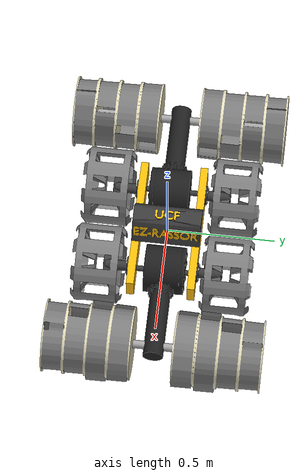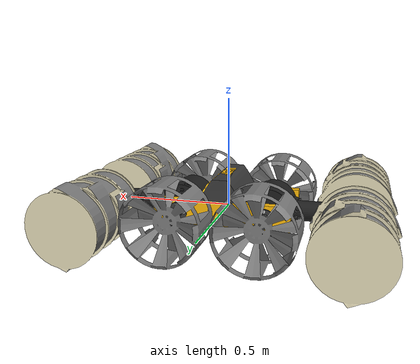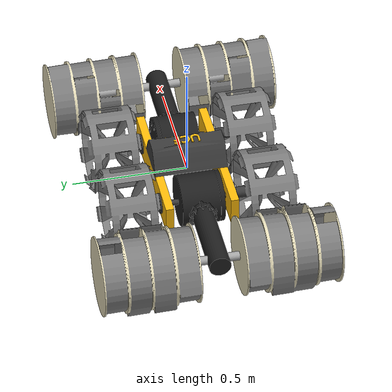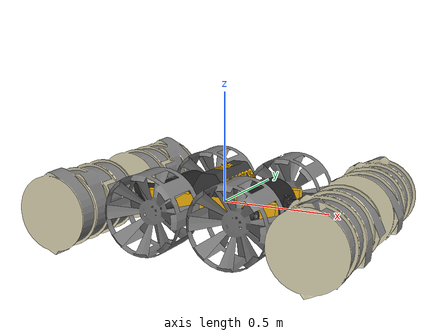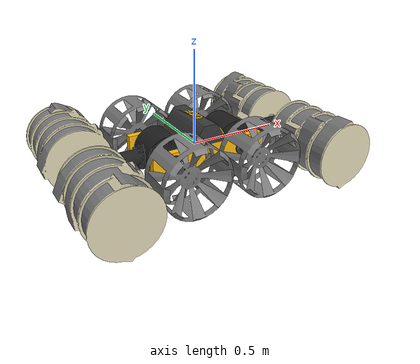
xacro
<?xml version='1.0'?>

<robot name="ezrassor" xmlns:xacro="http://www.ros.org/wiki/xacro">

  <xacro:property name="cameraSize" value="0.01"/>
  <xacro:property name="cameraMass" value="0.1"/>

  <xacro:include filename="$(find ezrassor_sim_description)/urdf/ezrassor.gazebo" />
  <xacro:include filename="$(find ezrassor_sim_description)/urdf/materials.xacro" />
  <xacro:include filename="$(find ezrassor_sim_description)/urdf/macros.xacro" />

  <!--Below are all of the robot's Links/-->
  <link name='base_link'>
   <pose>0 0 0 0 0 0</pose>
  </link>

  <link name='body'>
    <pose>0 0 0 0 0 0</pose>
    <inertial>
      <mass value="15.0"/>
      <origin xyz="0 0 0" rpy=" 0 0 0"/>
      <inertia
          ixx="0.5" ixy="0" ixz="0"
          iyy="1.0" iyz="0"
          izz="0.1"
      />
    </inertial>
    <collision name='collision'>
      <origin xyz="0 0 0" rpy=" 0 0 0"/>
      <geometry>
        <base_unit/>
      </geometry>
    </collision>
    <visual name='base_link_visual'>
      <origin xyz="0 0 0" rpy=" 0 0 0"/>
      <geometry>
        <base_unit/>
      </geometry>
    </visual>
  </link>

  <link name="left_wheel_front">
    <collision name="collision">
      <origin xyz="0 0 0" rpy="0 0 0"/>
      <geometry>
        <robot_wheel />
      </geometry>
      <surface>
        <friction>
          <mu> .6 </mu>
          <mu2> .6 </mu2>
        </friction>
      </surface>
      <surface>
        <friction>
          <mu> .6 </mu>
          <mu2> .6 </mu2>
        </friction>
      </surface>
    </collision>
    <visual name="left_wheel_front_visual">
      <origin xyz="0 0 0" rpy="0 0 0"/>
      <geometry>
        <robot_wheel />
      </geometry>
    </visual>
    <inertial>
      <origin xyz="0 0 0" rpy="0 0 0" />
      <mass value="5"/>
      <cylinder_inertia m="5" r="0.18" h="0.2"/>
    </inertial>
  </link>

  <link name="right_wheel_front">
    <collision name="collision">
      <origin xyz="0 0 0" rpy="0 0 3.14159"/>
      <geometry>
        <robot_wheel />
      </geometry>
      <surface>
        <friction>
        <mu> .6 </mu>
        <mu2> .6 </mu2>
        </friction>
      </surface>
    </collision>
    <visual name="right_wheel_front_visual">
      <origin xyz="0 0 0" rpy="0 0 3.14159"/>
      <geometry>
        <robot_wheel />
      </geometry>
    </visual>
    <inertial>
      <origin xyz="0 0 0" rpy="0 0 3.14159"/>
      <mass value="5"/>
      <cylinder_inertia m="5" r="0.18" h="0.2"/>
    </inertial>
  </link>

  <link name="left_wheel_back">
    <collision name="collision">
      <origin xyz="0 0 0" rpy="0 0 0"/>
      <geometry>
        <robot_wheel />
      </geometry>
        <surface>
          <friction>
            <mu> .6 </mu>
            <mu2> .6 </mu2>
         </friction>
        </surface>
    </collision>
    <visual name="left_wheel_back_visual">
      <origin xyz="0 0 0" rpy="0 0 0"/>
      <geometry>
        <robot_wheel />
      </geometry>
    </visual>
    <inertial>
      <origin xyz="0 0 0" rpy="0 0 0"/>
      <mass value="5"/>
      <cylinder_inertia m="5" r="0.18" h="0.2"/>
    </inertial>
  </link>

  <link name="right_wheel_back">
    <collision name="collision">
      <origin xyz="0 0 0" rpy="0 0 3.14159"/>
      <geometry>
        <robot_wheel />
      </geometry>
      <surface>
        <friction>
          <mu> .6 </mu>
          <mu2> .6 </mu2>
        </friction>
      </surface>
    </collision>
    <visual name="right_wheel_back_visual">
      <origin xyz="0 0 0" rpy="0 0 3.14159"/>
      <geometry>
        <robot_wheel />
      </geometry>
    </visual>
    <inertial>
      <origin xyz="0 0 0" rpy="0 0 3.14159"/>
      <mass value="5"/>
      <cylinder_inertia m="5" r="0.18" h="0.2"/>
    </inertial>
  </link>

  <link name="arm_front">
    <collision name="collision">
      <origin xyz="0 0 0" rpy="0 0 0"/>
      <geometry>
        <drum_arm />
      </geometry>
    </collision>
    <visual name="visual">
      <origin xyz="0 0 0" rpy="0 0 0" />
      <geometry>
        <drum_arm />
      </geometry>
    </visual>
    <inertial>
      <origin xyz="0 0 0" rpy="0 0 0"/>
      <mass value="5"/>
      <cylinder_inertia m="5" r="0.05" h="0.3"/>
    </inertial>
  </link>

  <link name="arm_back">
    <collision name="collision">
      <origin xyz="0 0 0" rpy="3.1415 0 3.1415"/>
      <geometry>
        <drum_arm />
      </geometry>
    </collision>
    <visual name="visual">
      <origin xyz="0 0 0" rpy="3.1415 0 3.1415"/>
      <geometry>
        <drum_arm />
      </geometry>
    </visual>
    <inertial>
      <origin xyz="0 0 0" rpy="0 0 3.1415"/>
      <mass value="5"/>
      <cylinder_inertia m="5" r="0.05" h="0.3"/>
      <inertia
        ixx="1.0" ixy="0.0" ixz="0.0"
        iyy="1.0" iyz="0.0"
        izz="1.0"/>
    </inertial>
  </link>

  <link name="drum_front">
    <collision name="collision">
      <origin xyz="0 0 0" rpy="0 1.5707 1.5707"/>
      <geometry>
        <cylinder radius="0.1839" length="1.0"/>
      </geometry>
    </collision>
    <visual name="drum_front_visual">
      <origin xyz="0 0 0" rpy="0 0 0"/>
      <geometry>
        <robot_arm_drum />
      </geometry>
    </visual>
    <inertial>
      <origin xyz="0 0 0" rpy="0 0 0"/>
      <mass value="5"/>
      <cylinder_inertia m="5" r="0.1839" h="1.0"/>
    </inertial>
  </link>

  <link name="drum_back">
     <collision name="collision">
      <origin xyz="0 0 0" rpy="0 1.5707 1.5707"/>
      <geometry>
        <cylinder radius="0.1839" length="1.0"/>
      </geometry>
    </collision>
    <visual name="drum_back">
      <origin xyz="0 0 0" rpy="3.1415 0 3.14159"/>
      <geometry>
        <robot_arm_drum />
      </geometry>
    </visual>
    <inertial>
      <origin xyz="0 0 0" rpy="0 0 3.14159"/>
      <mass value="5"/>
      <cylinder_inertia m="5" r="0.1839" h="1.0"/>
    </inertial>
  </link>

  <!-- Transmissions -->
  <transmission name="left_wheel_front_tran">
    <type>transmission_interface/SimpleTransmission</type>
    <joint name="left_wheel_front_hinge">
      <hardwareInterface>hardware_interface/VelocityJointInterface</hardwareInterface>
    </joint>
    <actuator name="left_wheel_front_motor">
      <hardwareInterface>hardware_interface/VelocityJointInterface</hardwareInterface>
      <mechanicalReduction>1</mechanicalReduction>
    </actuator>
  </transmission>

  <transmission name="left_wheel_back_tran">
    <type>transmission_interface/SimpleTransmission</type>
    <joint name="left_wheel_back_hinge">
      <hardwareInterface>hardware_interface/VelocityJointInterface</hardwareInterface>
    </joint>
    <actuator name="left_wheel_back_motor">
      <hardwareInterface>hardware_interface/VelocityJointInterface</hardwareInterface>
      <mechanicalReduction>1</mechanicalReduction>
    </actuator>
  </transmission>

  <transmission name="right_wheel_front_tran">
    <type>transmission_interface/SimpleTransmission</type>
    <joint name="right_wheel_front_hinge">
      <hardwareInterface>hardware_interface/VelocityJointInterface</hardwareInterface>
    </joint>
    <actuator name="right_wheel_front_motor">
      <hardwareInterface>hardware_interface/VelocityJointInterface</hardwareInterface>
      <mechanicalReduction>1</mechanicalReduction>
    </actuator>
  </transmission>

  <transmission name="right_wheel_back_tran">
    <type>transmission_interface/SimpleTransmission</type>
    <joint name="right_wheel_back_hinge">
      <hardwareInterface>hardware_interface/VelocityJointInterface</hardwareInterface>
    </joint>
    <actuator name="right_wheel_back_motor">
      <hardwareInterface>hardware_interface/VelocityJointInterface</hardwareInterface>
      <mechanicalReduction>1</mechanicalReduction>
    </actuator>
  </transmission>

  <transmission name="arm_front_tran">
    <type>transmission_interface/SimpleTransmission</type>
    <joint name="arm_front_hinge">
      <hardwareInterface>hardware_interface/VelocityJointInterface</hardwareInterface>
    </joint>
    <actuator name="arm_front_motor">
      <hardwareInterface>hardware_interface/VelocityJointInterface</hardwareInterface>
      <mechanicalReduction>1</mechanicalReduction>
    </actuator>
  </transmission>

  <transmission name="arm_back_tran">
    <type>transmission_interface/SimpleTransmission</type>
    <joint name="arm_back_hinge">
      <hardwareInterface>hardware_interface/VelocityJointInterface</hardwareInterface>
    </joint>
    <actuator name="arm_back_motor">
      <hardwareInterface>hardware_interface/VelocityJointInterface</hardwareInterface>
      <mechanicalReduction>1</mechanicalReduction>
    </actuator>
  </transmission>

  <transmission name="drum_front_hinge_tran">
    <type>transmission_interface/SimpleTransmission</type>
    <joint name="drum_front_hinge">
      <hardwareInterface>hardware_interface/VelocityJointInterface</hardwareInterface>
    </joint>
    <actuator name="drum_front_hinge_motor">
      <hardwareInterface>hardware_interface/VelocityJointInterface</hardwareInterface>
      <mechanicalReduction>1</mechanicalReduction>
    </actuator>
  </transmission>

  <transmission name="drum_back_hinge_tran">
    <type>transmission_interface/SimpleTransmission</type>
    <joint name="drum_back_hinge">
      <hardwareInterface>hardware_interface/VelocityJointInterface</hardwareInterface>
    </joint>
    <actuator name="drum_back_hinge_motor">
      <hardwareInterface>hardware_interface/VelocityJointInterface</hardwareInterface>
      <mechanicalReduction>1</mechanicalReduction>
    </actuator>
  </transmission>

  <!-- Front Camera Added -->
  <link name="depth_camera_front">
    <collision>
      <origin xyz="0 0 0" rpy="0 0 0"/>
      <geometry>
        <box size="${cameraSize} ${cameraSize} ${cameraSize}"/>
      </geometry>
    </collision>

    <visual>
      <origin xyz="0 0 0" rpy="0 0 0"/>
      <geometry>
        <box size="${cameraSize} ${cameraSize} ${cameraSize}"/>
      </geometry>
      <material name="green"/>
    </visual>

    <inertial>
      <mass value="${cameraMass}" />
      <origin xyz="0 0 0" rpy="0 0 0"/>
      <box_inertia m="${cameraMass}" x="${cameraSize}" y="${cameraSize}" z="${cameraSize}" />
      <inertia ixx="1e-6" ixy="0" ixz="0" iyy="1e-6" iyz="0" izz="1e-6" />
    </inertial>
  </link>

  <link name="imu_link">
    <collision>
      <origin xyz="0 0 0" rpy="0 0 0"/>
      <geometry>
        <box size="${cameraSize} ${cameraSize} ${cameraSize}"/>
      </geometry>
    </collision>

    <visual>
      <origin xyz="0 0 0" rpy="0 0 0"/>
      <geometry>
        <box size="${cameraSize} ${cameraSize} ${cameraSize}"/>
      </geometry>
      <material name="green"/>
    </visual>

    <inertial>
      <mass value="${cameraMass}" />
      <origin xyz="0 0 0" rpy="0 0 0"/>
      <box_inertia m="${cameraMass}" x="${cameraSize}" y="${cameraSize}" z="${cameraSize}" />
      <inertia ixx="1e-6" ixy="0" ixz="0" iyy="1e-6" iyz="0" izz="1e-6" />
    </inertial>
  </link>

  <joint name="body_joint" type="fixed">
    <axis xyz="0 0 0"/>
    <origin xyz="0 0 0" rpy="0 0 0"/>
    <parent link="base_link"/>
    <child link="body"/>
  </joint>

  <joint name="imu_joint" type="fixed">
    <axis xyz="0 0 0" />
    <origin xyz="0 0 0" rpy="0 0 0"/>
    <parent link="base_link"/>
    <child link="imu_link"/>
  </joint>

  <joint name="camera_front_joint" type="fixed">
    <origin xyz=".3 0 -.1" rpy="0 0 0"/>
    <axis xyz="0 1 0" />
    <parent link="base_link"/>
    <child link="depth_camera_front"/>
  </joint>

  <joint name="depth_camera_optical_joint" type="fixed">
	  <origin xyz="0 0 0" rpy="${-pi/2} 0 ${-pi/2}"/>
	  <parent link="depth_camera_front"/>
	  <child link="depth_camera_optical_frame"/>
  </joint>
  <link name="depth_camera_optical_frame"/>

  <joint type="continuous" name="left_wheel_front_hinge">
    <origin xyz="0.20 0.285 0" rpy="0 0 0"/>
    <child link="left_wheel_front"/>
    <parent link="base_link"/>
    <axis xyz="0 1 0" rpy="0 0 0"/>
    <limit effort="100" velocity="100"/>
    <joint_properties damping="0.0" friction="0.0"/>
  </joint>

  <joint type="continuous" name="right_wheel_front_hinge">
    <origin xyz="0.20 -0.285 0" rpy="0 0 0"/>
    <child link="right_wheel_front"/>
    <parent link="base_link"/>
    <axis xyz="0 1 0" rpy="0 0 0"/>
    <limit effort="100" velocity="100"/>
    <joint_properties damping="0.0" friction="0.0"/>
  </joint>

  <joint type="continuous" name="left_wheel_back_hinge">
    <origin xyz="-0.20 0.285 0" rpy="0 0 0"/>
    <child link="left_wheel_back"/>
    <parent link="base_link"/>
    <axis xyz="0 1 0" rpy="0 0 0"/>
    <limit effort="100" velocity="100"/>
    <joint_properties damping="0.0" friction="0.0"/>
  </joint>

  <joint type="continuous" name="right_wheel_back_hinge">
    <origin xyz="-0.20 -0.285 0" rpy="0 0 0"/>
    <child link="right_wheel_back"/>
    <parent link="base_link"/>
    <axis xyz="0 1 0" rpy="0 0 0"/>
    <limit effort="100" velocity="100"/>
    <joint_properties damping="0.0" friction="0.0"/>
  </joint>

  <joint type="continuous" name="arm_front_hinge">
    <origin xyz="0.20 0 0" rpy="3.1415 0 0"/>
    <child link="arm_front"/>
    <parent link="base_link"/>
    <axis xyz="0 1 0" rpy="0 0 0"/>
    <limit effort="100" velocity="100"/>
    <joint_properties damping="0.0" friction="0.0"/>
  </joint>

  <joint type="continuous" name="arm_back_hinge">
    <origin xyz="-0.20 0 0" rpy="0 0 0"/>
    <child link="arm_back"/>
    <parent link="base_link"/>
    <axis xyz="0 1 0" rpy="0 0 0"/>
    <limit effort="100" velocity="100"/>
    <joint_properties damping="0.0" friction="0.0"/>
  </joint>

  <joint type="continuous" name="drum_front_hinge">
    <origin xyz="0.388245 0 0" rpy="3.1415 0 0"/>
    <child link="drum_front"/>
    <parent link="arm_front"/>
    <axis xyz="0 1 0" rpy="0 0 0"/>
    <limit effort="100" velocity="100"/>
    <joint_properties damping="0.0" friction="0.0"/>
  </joint>

  <joint type="continuous" name="drum_back_hinge">
    <origin xyz="-0.388245 0 0" rpy="3.1415 0 0"/>
    <child link="drum_back"/>
    <parent link="arm_back"/>
    <axis xyz="0 1 0" rpy="0 0 0"/>
    <limit effort="100" velocity="100"/>
    <joint_properties damping="0.0" friction="0.0"/>
  </joint>

</robot>

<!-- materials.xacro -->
<robot name="ezrassor" xmlns:xacro="http://www.ros.org/wiki/xacro">
  <material name="black">
    <color rgba="0.0 0.0 0.0 1.0"/>
  </material>

  <material name="blue">
    <color rgba="0.0 0.0 0.8 1.0"/>
  </material>

  <material name="green">
    <color rgba="0.0 0.8 0.0 1.0"/>
  </material>

  <material name="grey">
    <color rgba="0.2 0.2 0.2 1.0"/>
  </material>

  <material name="orange">
    <color rgba="${255/255} ${108/255} ${10/255} 1.0"/>
  </material>

  <material name="brown">
    <color rgba="${222/255} ${207/255} ${195/255} 1.0"/>
  </material>

  <material name="red">
    <color rgba="0.8 0.0 0.0 1.0"/>
  </material>

  <material name="white">
    <color rgba="1.0 1.0 1.0 1.0"/>
  </material>
</robot>

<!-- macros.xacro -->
<robot name="ezrassor" xmlns:xacro="http://www.ros.org/wiki/xacro">
    <!-- Inertia Tensors Used: https://en.wikipedia.org/wiki/List_of_moments_of_inertia#List_of_3D_inertia_tensors -->
    <xacro:macro name="cylinder_inertia" params="m r h">
    <inertia
        ixx="${m*((3*r*r)+(h*h))/12}" ixy = "0"                 ixz = "0"
                                  iyy="${m*((3*r*r)+(h*h))/12}" iyz = "0"
                                                            izz="${(m*(r*r))/2}"
    />
    </xacro:macro>

    <xacro:macro name="box_inertia" params="m x y z">
    <inertia  ixx="${m*(y*y+z*z)/12}" ixy = "0" ixz = "0"
        iyy="${m*(x*x+z*z)/12}" iyz = "0"
        izz="${m*(x*x+z*z)/12}"
    />
    </xacro:macro>

    <xacro:macro name="sphere_inertia" params="m r">
    <inertia  ixx="${2*m*r*r/5}" ixy = "0" ixz = "0"
        iyy="${2*m*r*r/5}" iyz = "0"
        izz="${2*m*r*r/5}"
    />
    </xacro:macro>

    <xacro:macro name="slender_rod_along_y_inertia" params="m l mass_about">
        <xacro:if value="${mass_about == 'end'}">
            <inertia
                ixx="${1/3*m*(l*l)}" ixy = "0"
                ixz = "0" iyy="0"
                iyz = "0" izz="${1/3*m*(l*l)}" />
        </xacro:if>
        <xacro:unless value="${mass_about == 'center'}">
            <inertia
                ixx="${1/12*m*(l*l)}" ixy = "0"
                ixz = "0" iyy="0"
                iyz = "0" izz="${1/12*m*(l*l)}" />
        </xacro:unless>
    </xacro:macro>

    <!-- VISUAL AND COLLISION MACROS -->
    <xacro:macro name="robot_arm">
        <mesh filename="package://ezrassor_sim_description/meshes/drum_arm_short.dae" scale="1.0 1.0 1.0"></mesh>
    </xacro:macro>

    <xacro:macro name="robot_arm_drum">
        <mesh filename="package://ezrassor_sim_description/meshes/drum.dae" scale="0.35 0.35 0.35"></mesh>
    </xacro:macro>

    <xacro:macro name="robot_wheel">
        <mesh filename="package://ezrassor_sim_description/meshes/wheel.dae" scale="0.35 0.35 0.35"></mesh>
    </xacro:macro>

    <xacro:macro name="base_unit">
        <mesh filename="package://ezrassor_sim_description/meshes/base_unit.dae" scale="0.35 0.35 0.35"></mesh>
    </xacro:macro>

    <xacro:macro name="drum_arm">
        <mesh filename="package://ezrassor_sim_description/meshes/drum_arm.dae" scale="0.35 0.35 0.35"></mesh>
    </xacro:macro>
</robot>
